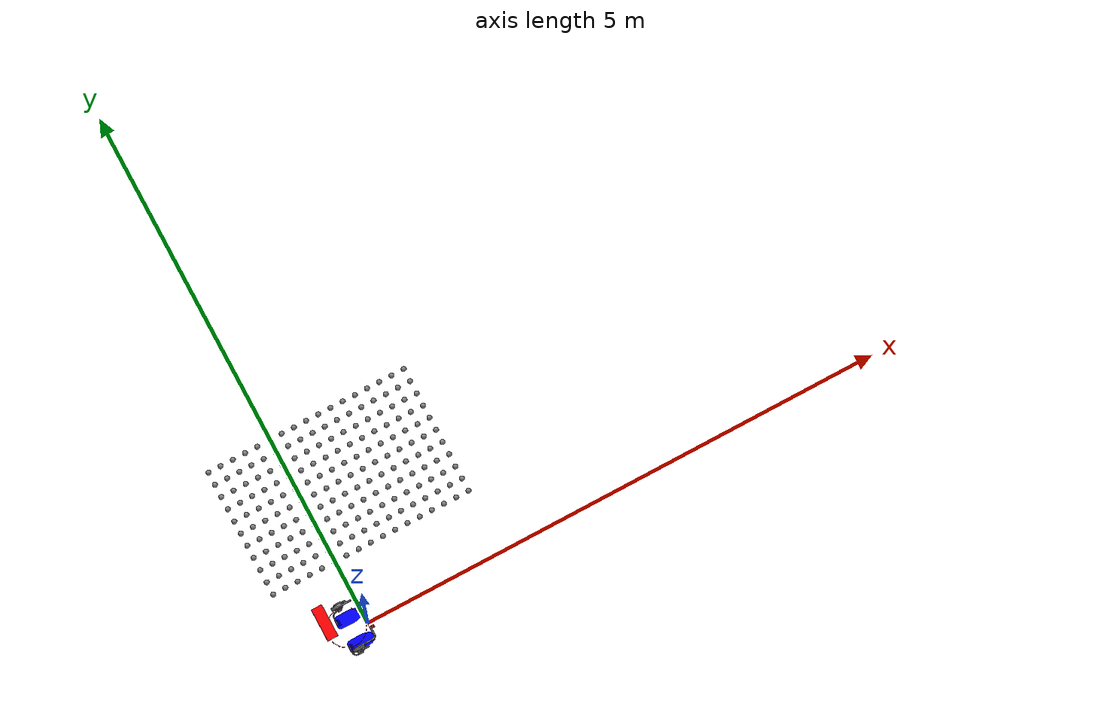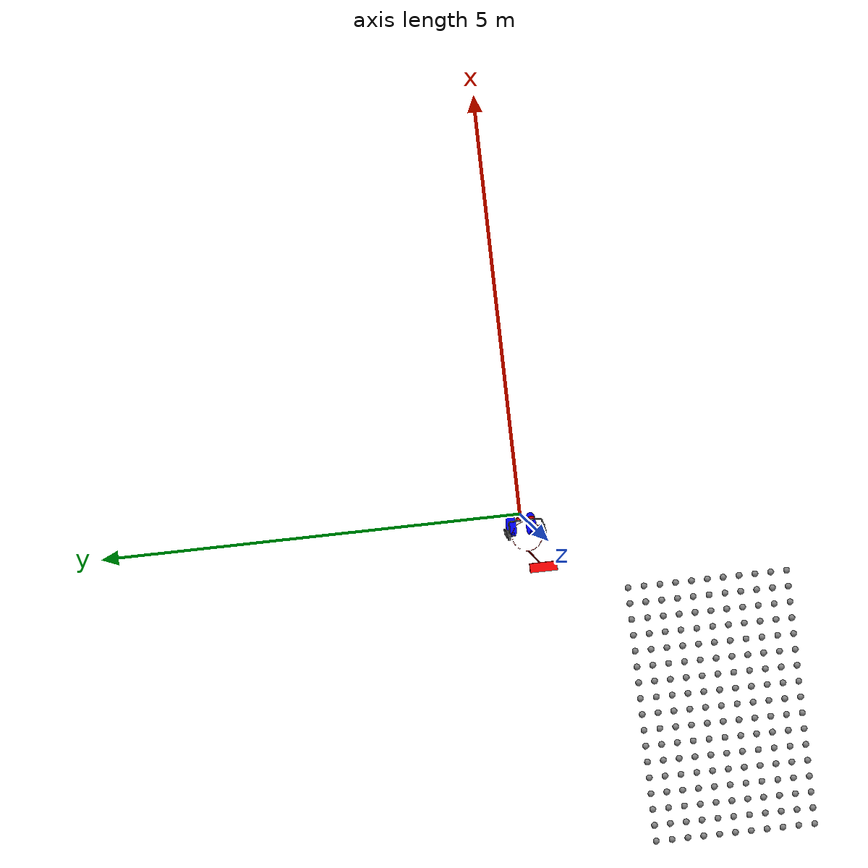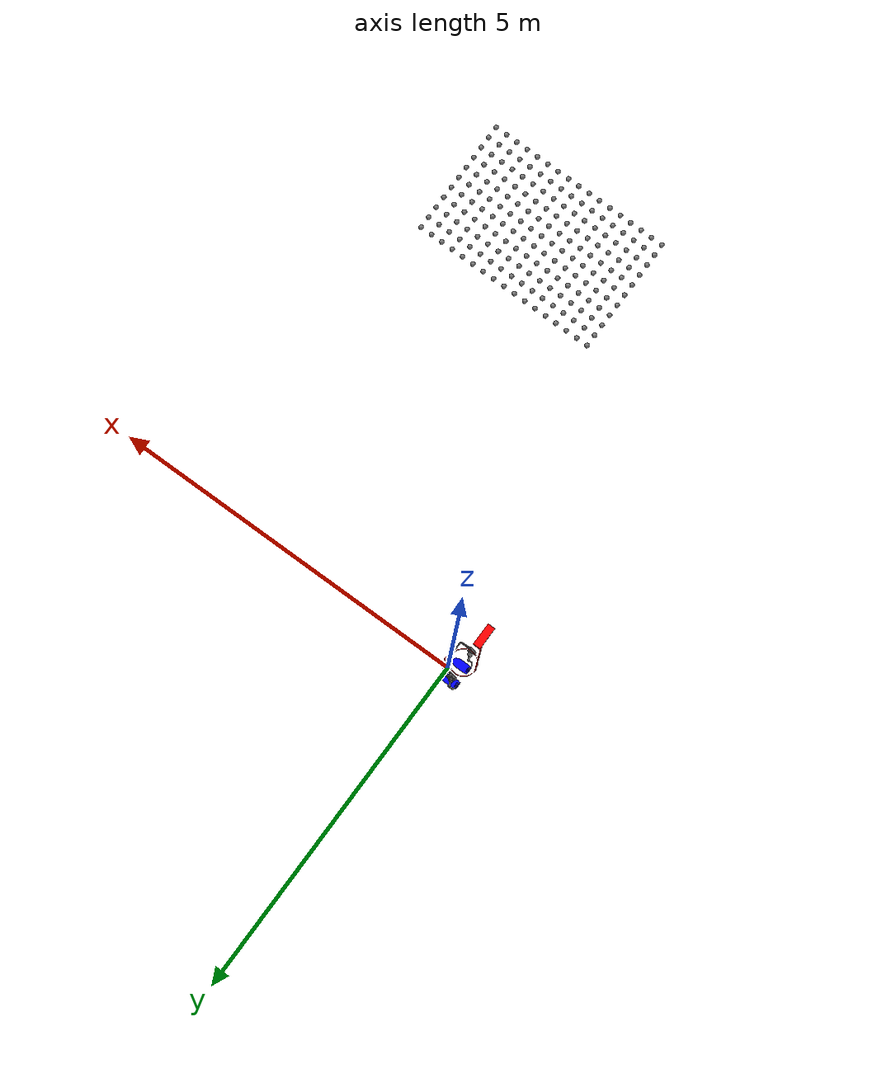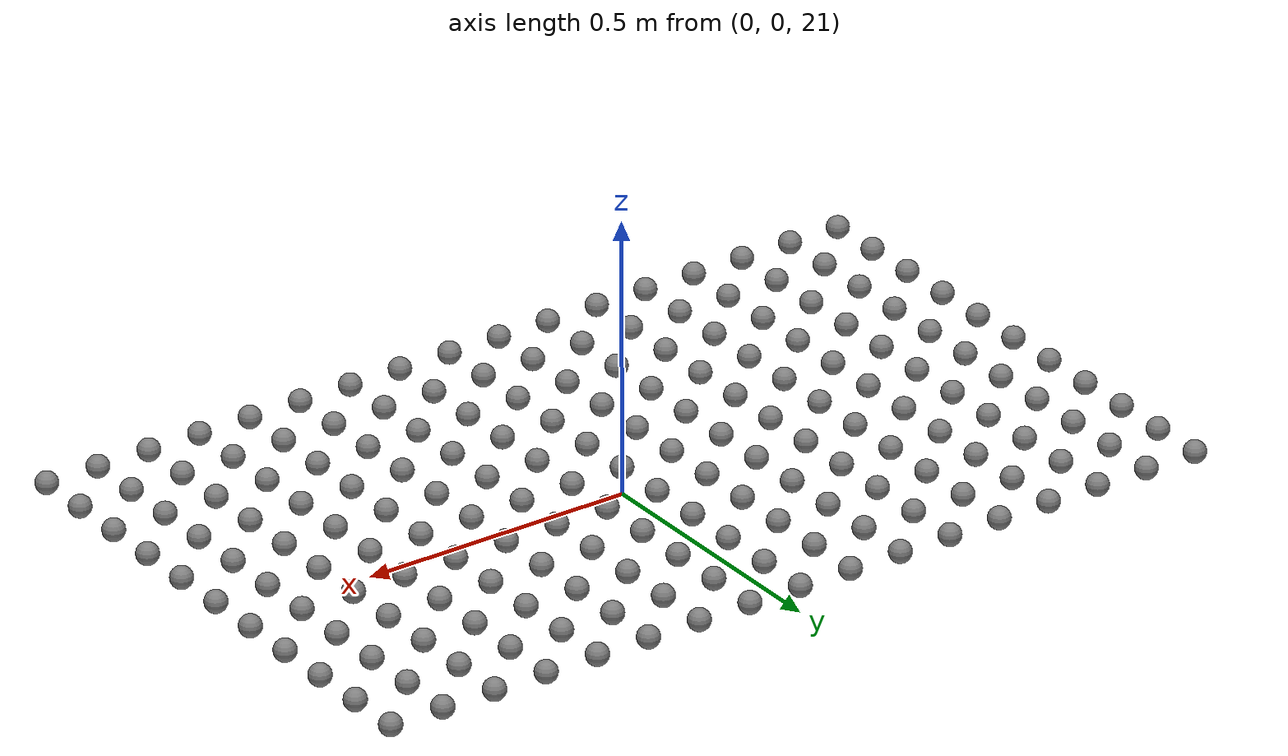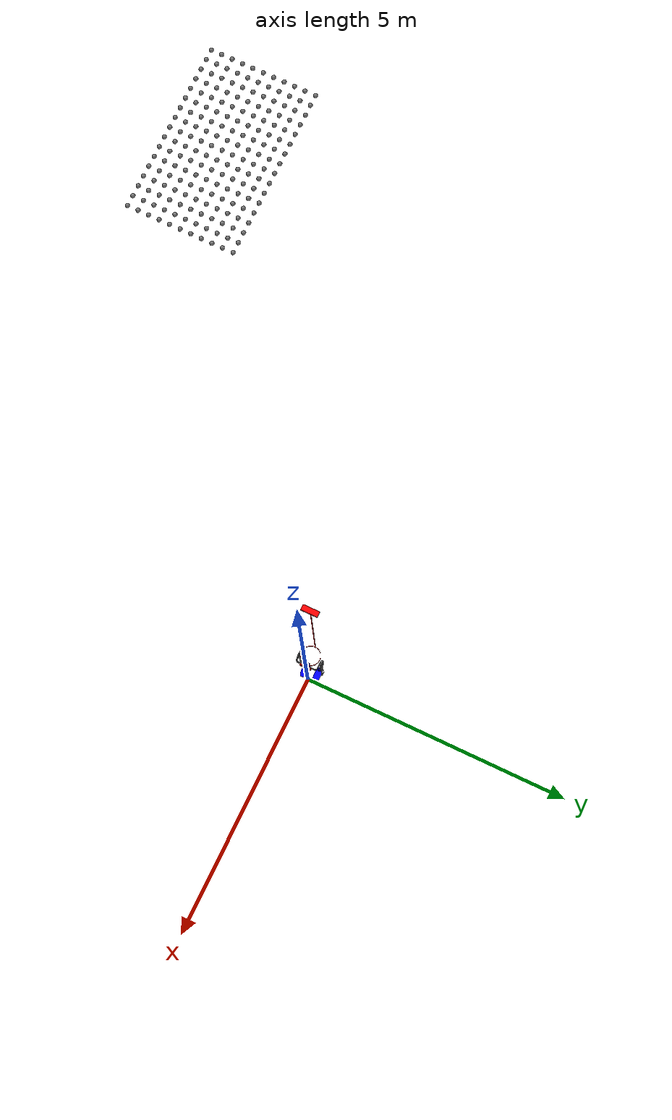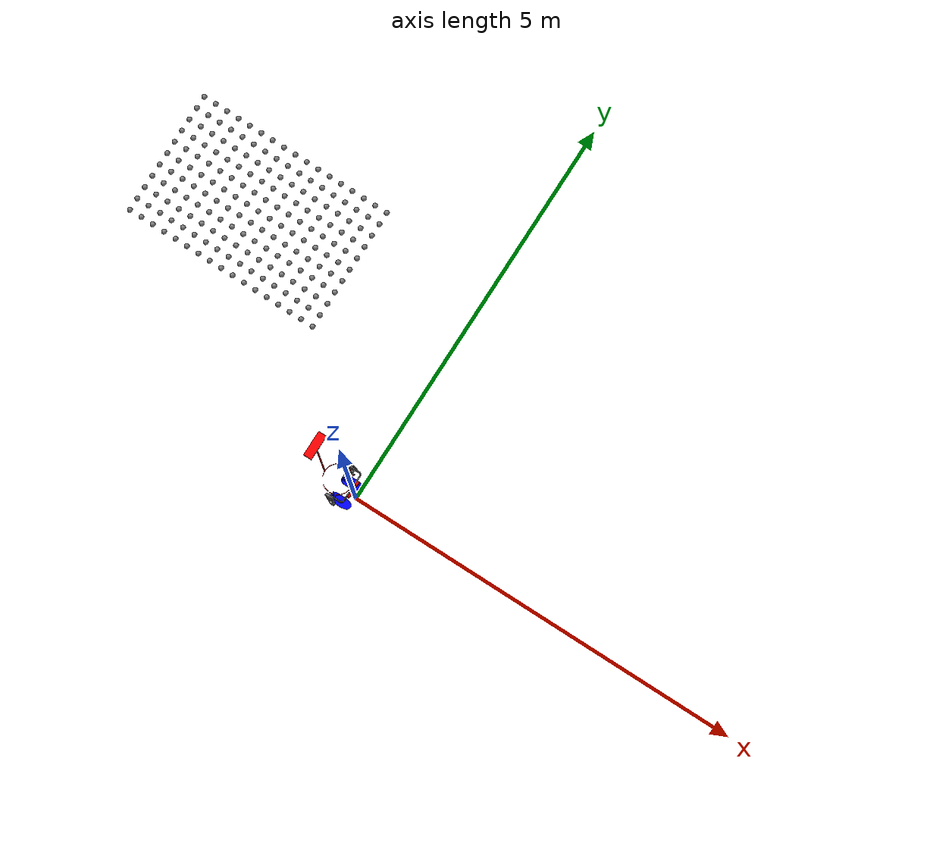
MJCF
<mujoco model="a2">

  <!-- ========== Compiler & Options ========== -->
  <compiler angle="radian" meshdir="../meshes" autolimits="true"/>

  <option timestep="0.005" gravity="0 0 -9.81">
  </option>

  <default>

    <joint damping="0.0" armature="0.00" limited="true"/>

    <default class="gemo_visual">  <!-- 只显示,不参与碰撞 -->
      <geom contype="0" conaffinity="0"/>
    </default>

    <default class="gemo_collision">  <!-- 只参与碰撞 -->
      <geom contype="0" conaffinity="1" group="3"/>
    </default>

    <default class="gemo_collision_box">
      <geom contype="1" conaffinity="1" group="4"/>
    </default>

  </default>

  <!-- ========== Assets (STL Meshes) ========== -->
  <asset>
    <mesh name="mesh_base"            file="base_link.STL"/>
    <mesh name="mesh_l_hip_roll"      file="left_hip_roll_link.STL"/>
    <mesh name="mesh_l_hip_yaw"       file="left_hip_yaw_link.STL"/>
    <mesh name="mesh_l_hip_pitch"     file="left_hip_pitch_link.STL"/>
    <mesh name="mesh_l_knee"          file="left_knee_link.STL"/>
    <mesh name="mesh_l_ankle_pitch"   file="left_ankle_pitch_link.STL"/>
    <mesh name="mesh_l_ankle_roll"    file="left_ankle_roll_link.STL"/>
    <mesh name="mesh_r_hip_roll"      file="right_hip_roll_link.STL"/>
    <mesh name="mesh_r_hip_yaw"       file="right_hip_yaw_link.STL"/>
    <mesh name="mesh_r_hip_pitch"     file="right_hip_pitch_link.STL"/>
    <mesh name="mesh_r_knee"          file="right_knee_link.STL"/>
    <mesh name="mesh_r_ankle_pitch"   file="right_ankle_pitch_link.STL"/>
    <mesh name="mesh_r_ankle_roll"    file="right_ankle_roll_link.STL"/>
  </asset>

  <asset>
      <texture name='texture_plane' type='2d' builtin='checker' rgb1='0.2745 0.5098 0.7059' rgb2='0.5294 0.8078 0.9804' width='128' height='128'/>
      <material name='material_plane' reflectance='0.0' texture='texture_plane' texrepeat='1 1' texuniform='true'/>
      <material name="gray" rgba="0.3 0.3 0.3 1"/>
      <material name="blue" rgba="0 0 1 1"/>
      <material name="red" rgba="1 0 0 1"/>
      <material name="green" rgba="0 1 0 1"/>
  </asset>

  <!-- ========== Worldbody ========== -->
  <worldbody>

    <body name= "box" pos="0 0 0" euler="0 0 0">
      <geom class="gemo_collision_box" type="box" size="0.2 0.2 0.1" pos="1.5 0.6 0.1"/>
    </body>

    <geom name="floor" type="plane" conaffinity="2" group="4" size="100 100 .2" material="material_plane"/>
       <light directional="true" ambient=".3 .3 .3" pos="30 30 30" dir="0 -.5 -1"
                    diffuse=".5 .5 .5" specular=".5 .5 .5" />

    <body name="base_link" pos="0 0 1.05" euler="0 0 0">
      <freejoint name="base_free"/>
      <inertial pos="-0.14464 0 0.63562" mass="1.6082" fullinertia="1.6349 1.6777 0.06302 0 0.2309 0"/>
      <geom class="gemo_visual" type="mesh" mesh="mesh_base" rgba="1 0 0 1"/>
      <geom class="gemo_collision" type="box" size="0.2 0.15 0.75" pos="-0.2 0 0.75"/>

      <body name="left_hip_roll_link" pos="-0.001 0.075 0" euler="0 0 0">
        <inertial pos="-0.11964 0.10244 -0.05598" mass="0.34283" fullinertia="0.00223 0.00379 0.00287 0.00091 -0.00132 0.00049"/>
        <joint name="left_hip_roll_joint" axis="1 0 0" range="-0.52 2.97"/>
        <geom class="gemo_visual" type="mesh" mesh="mesh_l_hip_roll"/>

        <body name="left_hip_yaw_link" pos="-0.166 0.128 -0.0835" euler="0 0 0">
          <inertial pos="-1E-05 0.00843 -0.04551" mass="0.46018"
                    fullinertia="0.00023 0.00035 0.00016 0 0 0"/>
          <joint name="left_hip_yaw_joint" axis="0 0 1" range="-2.76 2.76"/>
          <geom class="gemo_visual" type="mesh" mesh="mesh_l_hip_yaw"/>

          <body name="left_hip_pitch_link" pos="0 0.028 -0.0455" euler="0 0 0">
            <inertial pos="0.00472 -0.01824 -0.17562" mass="0.81624"
                      fullinertia="0.01192 0.01225 0.00052 -4E-05 -0.00047 -0.00068"/>
            <joint name="left_hip_pitch_joint" axis="0 1 0" range="-2.53 2.88"/>
            <geom class="gemo_visual" type="mesh" mesh="mesh_l_hip_pitch"/>

            <body name="left_knee_link" pos="0 -0.04325 -0.4" euler="0 0 0">
              <inertial pos="0 0.01314 -0.14741" mass="0.10574"
                        fullinertia="0.0018 0.0018 1E-05 0 0 -1E-05"/>
              <joint name="left_knee_joint" axis="0 1 0" range="-0.09 2.88"/>
              <geom class="gemo_visual" type="mesh" mesh="mesh_l_knee"/>

              <body name="left_ankle_pitch_link" pos="0 0.00825 -0.392" euler="0 0 0">
                <inertial pos="-0.04625 -0.01898 0" mass="0.04908"
                          fullinertia="7E-05 5E-05 0.00011 -4E-05 0 0"/>
                <joint name="left_ankle_pitch_joint" axis="0 1 0" range="-0.87 0.52"/>
                <geom class="gemo_visual" type="mesh" mesh="mesh_l_ankle_pitch"/>

                <body name="left_ankle_roll_link" pos="-0.063229 -0.0765 0" euler="0 0 0">
                  <inertial pos="0.04783 0 -0.08669" mass="0.21284"
                            fullinertia="0.00043 0.00147 0.00134 0 0.00031 0"/>
                  <joint name="left_ankle_roll_joint" axis="1 0 0" range="-0.26 0.26"/>
                  <geom class="gemo_visual" type="mesh" mesh="mesh_l_ankle_roll" rgba="0 0 1 1"/>

                  <body name="leg_lfoot_link" pos="0.11 0.0 -0.125" euler="0 0 1.5708">
                    <inertial pos="0 0 0" mass="0.0001"
                              fullinertia="0.000001 0.000001 0.000001 0 0 0"/>
                    <geom class="gemo_collision" type="box" size="0.06 0.1275 0.001" pos="0 0 0.0125" rgba="0 1 0 1"/>
                  </body>
                </body>
              </body>
            </body>
          </body>
        </body>
      </body>

      <body name="right_hip_roll_link" pos="-0.001 -0.075 0" euler="0 0 0">
        <inertial pos="-0.11964 -0.10243 -0.05598" mass="0.34281" fullinertia="0.00223 0.00379 0.00287 -0.00091 -0.00132 -0.00049"/>
        <joint name="right_hip_roll_joint" axis="1 0 0" range="-2.97 0.52"/>
        <geom class="gemo_visual" type="mesh" mesh="mesh_r_hip_roll"/>

        <body name="right_hip_yaw_link" pos="-0.166 -0.128 -0.0835" euler="0 0 0">
          <inertial pos="-1E-05 -0.00843 -0.04551" mass="0.46018"
                    fullinertia="0.00023 0.00035 0.00016 0 0 0"/>
          <joint name="right_hip_yaw_joint" axis="0 0 1" range="-2.76 2.76"/>
          <geom class="gemo_visual" type="mesh" mesh="mesh_r_hip_yaw"/>

          <body name="right_hip_pitch_link" pos="0 -0.028 -0.0455" euler="0 0 0">
            <inertial pos="0.00472 0.01824 -0.17562" mass="0.81624"
                      fullinertia="0.01192 0.01225 0.00052 4E-05 -0.00047 0.00068"/>
            <joint name="right_hip_pitch_joint" axis="0 1 0" range="-2.53 2.88"/>
            <geom class="gemo_visual" type="mesh" mesh="mesh_r_hip_pitch"/>

            <body name="right_knee_link" pos="0 0.04325 -0.4" euler="0 0 0">
              <inertial pos="0 -0.01314 -0.14741" mass="0.10574"
                        fullinertia="0.0018 0.0018 1E-05 0 0 1E-05"/>
              <joint name="right_knee_joint" axis="0 1 0" range="-0.09 2.88"/>
              <geom class="gemo_visual" type="mesh" mesh="mesh_r_knee"/>

              <body name="right_ankle_pitch_link" pos="0 -0.00825 -0.392" euler="0 0 0">
                <inertial pos="-0.04625 0.01898 0" mass="0.04908"
                          fullinertia="7E-05 5E-05 0.00011 4E-05 0 0"/>
                <joint name="right_ankle_pitch_joint" axis="0 1 0" range="-0.87 0.52"/>
                <geom class="gemo_visual" type="mesh" mesh="mesh_r_ankle_pitch"/>

                <body name="right_ankle_roll_link" pos="-0.063229 0.0765 0" euler="0 0 0">
                  <inertial pos="0.04784 0 -0.08669" mass="0.21281"
                            fullinertia="0.00043 0.00147 0.00134 0 0.00031 0"/>
                  <joint name="right_ankle_roll_joint" axis="1 0 0" range="-0.26 0.26"/>
                  <geom class="gemo_visual" type="mesh" mesh="mesh_r_ankle_roll" rgba="0 0 1 1"/>

                  <body name="leg_rfoot_link" pos="0.11 0.0 -0.125" euler="0 0 1.5708">
                    <inertial pos="0 0 0" mass="0.0001"
                              fullinertia="0.000001 0.000001 0.000001 0 0 0"/>
                    <geom class="gemo_collision" type="box" size="0.06 0.1275 0.001" pos="0 0 0.0125" rgba="0 1 0 1"/>
                  </body>
                </body>
              </body>
            </body>
          </body>
        </body>
      </body>

    <!-- ========== Ray Scanner Sites (187 rays, 17×11 grid) ========== -->
      <site name="ray_site_0" type="sphere" size="0.02" pos="-0.8 -0.5 20.0" zaxis="0 0 -1"/>
      <site name="ray_site_1" type="sphere" size="0.02" pos="-0.7 -0.5 20.0" zaxis="0 0 -1"/>
      <site name="ray_site_2" type="sphere" size="0.02" pos="-0.6 -0.5 20.0" zaxis="0 0 -1"/>
      <site name="ray_site_3" type="sphere" size="0.02" pos="-0.5 -0.5 20.0" zaxis="0 0 -1"/>
      <site name="ray_site_4" type="sphere" size="0.02" pos="-0.4 -0.5 20.0" zaxis="0 0 -1"/>
      <site name="ray_site_5" type="sphere" size="0.02" pos="-0.3 -0.5 20.0" zaxis="0 0 -1"/>
      <site name="ray_site_6" type="sphere" size="0.02" pos="-0.2 -0.5 20.0" zaxis="0 0 -1"/>
      <site name="ray_site_7" type="sphere" size="0.02" pos="-0.1 -0.5 20.0" zaxis="0 0 -1"/>
      <site name="ray_site_8" type="sphere" size="0.02" pos="0.0 -0.5 20.0" zaxis="0 0 -1"/>
      <site name="ray_site_9" type="sphere" size="0.02" pos="0.1 -0.5 20.0" zaxis="0 0 -1"/>
      <site name="ray_site_10" type="sphere" size="0.02" pos="0.2 -0.5 20.0" zaxis="0 0 -1"/>
      <site name="ray_site_11" type="sphere" size="0.02" pos="0.3 -0.5 20.0" zaxis="0 0 -1"/>
      <site name="ray_site_12" type="sphere" size="0.02" pos="0.4 -0.5 20.0" zaxis="0 0 -1"/>
      <site name="ray_site_13" type="sphere" size="0.02" pos="0.5 -0.5 20.0" zaxis="0 0 -1"/>
      <site name="ray_site_14" type="sphere" size="0.02" pos="0.6 -0.5 20.0" zaxis="0 0 -1"/>
      <site name="ray_site_15" type="sphere" size="0.02" pos="0.7 -0.5 20.0" zaxis="0 0 -1"/>
      <site name="ray_site_16" type="sphere" size="0.02" pos="0.8 -0.5 20.0" zaxis="0 0 -1"/>
      <site name="ray_site_17" type="sphere" size="0.02" pos="-0.8 -0.4 20.0" zaxis="0 0 -1"/>
      <site name="ray_site_18" type="sphere" size="0.02" pos="-0.7 -0.4 20.0" zaxis="0 0 -1"/>
      <site name="ray_site_19" type="sphere" size="0.02" pos="-0.6 -0.4 20.0" zaxis="0 0 -1"/>
      <site name="ray_site_20" type="sphere" size="0.02" pos="-0.5 -0.4 20.0" zaxis="0 0 -1"/>
      <site name="ray_site_21" type="sphere" size="0.02" pos="-0.4 -0.4 20.0" zaxis="0 0 -1"/>
      <site name="ray_site_22" type="sphere" size="0.02" pos="-0.3 -0.4 20.0" zaxis="0 0 -1"/>
      <site name="ray_site_23" type="sphere" size="0.02" pos="-0.2 -0.4 20.0" zaxis="0 0 -1"/>
      <site name="ray_site_24" type="sphere" size="0.02" pos="-0.1 -0.4 20.0" zaxis="0 0 -1"/>
      <site name="ray_site_25" type="sphere" size="0.02" pos="0.0 -0.4 20.0" zaxis="0 0 -1"/>
      <site name="ray_site_26" type="sphere" size="0.02" pos="0.1 -0.4 20.0" zaxis="0 0 -1"/>
      <site name="ray_site_27" type="sphere" size="0.02" pos="0.2 -0.4 20.0" zaxis="0 0 -1"/>
      <site name="ray_site_28" type="sphere" size="0.02" pos="0.3 -0.4 20.0" zaxis="0 0 -1"/>
      <site name="ray_site_29" type="sphere" size="0.02" pos="0.4 -0.4 20.0" zaxis="0 0 -1"/>
      <site name="ray_site_30" type="sphere" size="0.02" pos="0.5 -0.4 20.0" zaxis="0 0 -1"/>
      <site name="ray_site_31" type="sphere" size="0.02" pos="0.6 -0.4 20.0" zaxis="0 0 -1"/>
      <site name="ray_site_32" type="sphere" size="0.02" pos="0.7 -0.4 20.0" zaxis="0 0 -1"/>
      <site name="ray_site_33" type="sphere" size="0.02" pos="0.8 -0.4 20.0" zaxis="0 0 -1"/>
      <site name="ray_site_34" type="sphere" size="0.02" pos="-0.8 -0.3 20.0" zaxis="0 0 -1"/>
      <site name="ray_site_35" type="sphere" size="0.02" pos="-0.7 -0.3 20.0" zaxis="0 0 -1"/>
      <site name="ray_site_36" type="sphere" size="0.02" pos="-0.6 -0.3 20.0" zaxis="0 0 -1"/>
      <site name="ray_site_37" type="sphere" size="0.02" pos="-0.5 -0.3 20.0" zaxis="0 0 -1"/>
      <site name="ray_site_38" type="sphere" size="0.02" pos="-0.4 -0.3 20.0" zaxis="0 0 -1"/>
      <site name="ray_site_39" type="sphere" size="0.02" pos="-0.3 -0.3 20.0" zaxis="0 0 -1"/>
      <site name="ray_site_40" type="sphere" size="0.02" pos="-0.2 -0.3 20.0" zaxis="0 0 -1"/>
      <site name="ray_site_41" type="sphere" size="0.02" pos="-0.1 -0.3 20.0" zaxis="0 0 -1"/>
      <site name="ray_site_42" type="sphere" size="0.02" pos="0.0 -0.3 20.0" zaxis="0 0 -1"/>
      <site name="ray_site_43" type="sphere" size="0.02" pos="0.1 -0.3 20.0" zaxis="0 0 -1"/>
      <site name="ray_site_44" type="sphere" size="0.02" pos="0.2 -0.3 20.0" zaxis="0 0 -1"/>
      <site name="ray_site_45" type="sphere" size="0.02" pos="0.3 -0.3 20.0" zaxis="0 0 -1"/>
      <site name="ray_site_46" type="sphere" size="0.02" pos="0.4 -0.3 20.0" zaxis="0 0 -1"/>
      <site name="ray_site_47" type="sphere" size="0.02" pos="0.5 -0.3 20.0" zaxis="0 0 -1"/>
      <site name="ray_site_48" type="sphere" size="0.02" pos="0.6 -0.3 20.0" zaxis="0 0 -1"/>
      <site name="ray_site_49" type="sphere" size="0.02" pos="0.7 -0.3 20.0" zaxis="0 0 -1"/>
      <site name="ray_site_50" type="sphere" size="0.02" pos="0.8 -0.3 20.0" zaxis="0 0 -1"/>
      <site name="ray_site_51" type="sphere" size="0.02" pos="-0.8 -0.2 20.0" zaxis="0 0 -1"/>
      <site name="ray_site_52" type="sphere" size="0.02" pos="-0.7 -0.2 20.0" zaxis="0 0 -1"/>
      <site name="ray_site_53" type="sphere" size="0.02" pos="-0.6 -0.2 20.0" zaxis="0 0 -1"/>
      <site name="ray_site_54" type="sphere" size="0.02" pos="-0.5 -0.2 20.0" zaxis="0 0 -1"/>
      <site name="ray_site_55" type="sphere" size="0.02" pos="-0.4 -0.2 20.0" zaxis="0 0 -1"/>
      <site name="ray_site_56" type="sphere" size="0.02" pos="-0.3 -0.2 20.0" zaxis="0 0 -1"/>
      <site name="ray_site_57" type="sphere" size="0.02" pos="-0.2 -0.2 20.0" zaxis="0 0 -1"/>
      <site name="ray_site_58" type="sphere" size="0.02" pos="-0.1 -0.2 20.0" zaxis="0 0 -1"/>
      <site name="ray_site_59" type="sphere" size="0.02" pos="0.0 -0.2 20.0" zaxis="0 0 -1"/>
      <site name="ray_site_60" type="sphere" size="0.02" pos="0.1 -0.2 20.0" zaxis="0 0 -1"/>
      <site name="ray_site_61" type="sphere" size="0.02" pos="0.2 -0.2 20.0" zaxis="0 0 -1"/>
      <site name="ray_site_62" type="sphere" size="0.02" pos="0.3 -0.2 20.0" zaxis="0 0 -1"/>
      <site name="ray_site_63" type="sphere" size="0.02" pos="0.4 -0.2 20.0" zaxis="0 0 -1"/>
      <site name="ray_site_64" type="sphere" size="0.02" pos="0.5 -0.2 20.0" zaxis="0 0 -1"/>
      <site name="ray_site_65" type="sphere" size="0.02" pos="0.6 -0.2 20.0" zaxis="0 0 -1"/>
      <site name="ray_site_66" type="sphere" size="0.02" pos="0.7 -0.2 20.0" zaxis="0 0 -1"/>
      <site name="ray_site_67" type="sphere" size="0.02" pos="0.8 -0.2 20.0" zaxis="0 0 -1"/>
      <site name="ray_site_68" type="sphere" size="0.02" pos="-0.8 -0.1 20.0" zaxis="0 0 -1"/>
      <site name="ray_site_69" type="sphere" size="0.02" pos="-0.7 -0.1 20.0" zaxis="0 0 -1"/>
      <site name="ray_site_70" type="sphere" size="0.02" pos="-0.6 -0.1 20.0" zaxis="0 0 -1"/>
      <site name="ray_site_71" type="sphere" size="0.02" pos="-0.5 -0.1 20.0" zaxis="0 0 -1"/>
      <site name="ray_site_72" type="sphere" size="0.02" pos="-0.4 -0.1 20.0" zaxis="0 0 -1"/>
      <site name="ray_site_73" type="sphere" size="0.02" pos="-0.3 -0.1 20.0" zaxis="0 0 -1"/>
      <site name="ray_site_74" type="sphere" size="0.02" pos="-0.2 -0.1 20.0" zaxis="0 0 -1"/>
      <site name="ray_site_75" type="sphere" size="0.02" pos="-0.1 -0.1 20.0" zaxis="0 0 -1"/>
      <site name="ray_site_76" type="sphere" size="0.02" pos="0.0 -0.1 20.0" zaxis="0 0 -1"/>
      <site name="ray_site_77" type="sphere" size="0.02" pos="0.1 -0.1 20.0" zaxis="0 0 -1"/>
      <site name="ray_site_78" type="sphere" size="0.02" pos="0.2 -0.1 20.0" zaxis="0 0 -1"/>
      <site name="ray_site_79" type="sphere" size="0.02" pos="0.3 -0.1 20.0" zaxis="0 0 -1"/>
      <site name="ray_site_80" type="sphere" size="0.02" pos="0.4 -0.1 20.0" zaxis="0 0 -1"/>
      <site name="ray_site_81" type="sphere" size="0.02" pos="0.5 -0.1 20.0" zaxis="0 0 -1"/>
      <site name="ray_site_82" type="sphere" size="0.02" pos="0.6 -0.1 20.0" zaxis="0 0 -1"/>
      <site name="ray_site_83" type="sphere" size="0.02" pos="0.7 -0.1 20.0" zaxis="0 0 -1"/>
      <site name="ray_site_84" type="sphere" size="0.02" pos="0.8 -0.1 20.0" zaxis="0 0 -1"/>
      <site name="ray_site_85" type="sphere" size="0.02" pos="-0.8 0.0 20.0" zaxis="0 0 -1"/>
      <site name="ray_site_86" type="sphere" size="0.02" pos="-0.7 0.0 20.0" zaxis="0 0 -1"/>
      <site name="ray_site_87" type="sphere" size="0.02" pos="-0.6 0.0 20.0" zaxis="0 0 -1"/>
      <site name="ray_site_88" type="sphere" size="0.02" pos="-0.5 0.0 20.0" zaxis="0 0 -1"/>
      <site name="ray_site_89" type="sphere" size="0.02" pos="-0.4 0.0 20.0" zaxis="0 0 -1"/>
      <site name="ray_site_90" type="sphere" size="0.02" pos="-0.3 0.0 20.0" zaxis="0 0 -1"/>
      <site name="ray_site_91" type="sphere" size="0.02" pos="-0.2 0.0 20.0" zaxis="0 0 -1"/>
      <site name="ray_site_92" type="sphere" size="0.02" pos="-0.1 0.0 20.0" zaxis="0 0 -1"/>
      <site name="ray_site_93" type="sphere" size="0.02" pos="0.0 0.0 20.0" zaxis="0 0 -1"/>
      <site name="ray_site_94" type="sphere" size="0.02" pos="0.1 0.0 20.0" zaxis="0 0 -1"/>
      <site name="ray_site_95" type="sphere" size="0.02" pos="0.2 0.0 20.0" zaxis="0 0 -1"/>
      <site name="ray_site_96" type="sphere" size="0.02" pos="0.3 0.0 20.0" zaxis="0 0 -1"/>
      <site name="ray_site_97" type="sphere" size="0.02" pos="0.4 0.0 20.0" zaxis="0 0 -1"/>
      <site name="ray_site_98" type="sphere" size="0.02" pos="0.5 0.0 20.0" zaxis="0 0 -1"/>
      <site name="ray_site_99" type="sphere" size="0.02" pos="0.6 0.0 20.0" zaxis="0 0 -1"/>
      <site name="ray_site_100" type="sphere" size="0.02" pos="0.7 0.0 20.0" zaxis="0 0 -1"/>
      <site name="ray_site_101" type="sphere" size="0.02" pos="0.8 0.0 20.0" zaxis="0 0 -1"/>
      <site name="ray_site_102" type="sphere" size="0.02" pos="-0.8 0.1 20.0" zaxis="0 0 -1"/>
      <site name="ray_site_103" type="sphere" size="0.02" pos="-0.7 0.1 20.0" zaxis="0 0 -1"/>
      <site name="ray_site_104" type="sphere" size="0.02" pos="-0.6 0.1 20.0" zaxis="0 0 -1"/>
      <site name="ray_site_105" type="sphere" size="0.02" pos="-0.5 0.1 20.0" zaxis="0 0 -1"/>
      <site name="ray_site_106" type="sphere" size="0.02" pos="-0.4 0.1 20.0" zaxis="0 0 -1"/>
      <site name="ray_site_107" type="sphere" size="0.02" pos="-0.3 0.1 20.0" zaxis="0 0 -1"/>
      <site name="ray_site_108" type="sphere" size="0.02" pos="-0.2 0.1 20.0" zaxis="0 0 -1"/>
      <site name="ray_site_109" type="sphere" size="0.02" pos="-0.1 0.1 20.0" zaxis="0 0 -1"/>
      <site name="ray_site_110" type="sphere" size="0.02" pos="0.0 0.1 20.0" zaxis="0 0 -1"/>
      <site name="ray_site_111" type="sphere" size="0.02" pos="0.1 0.1 20.0" zaxis="0 0 -1"/>
      <site name="ray_site_112" type="sphere" size="0.02" pos="0.2 0.1 20.0" zaxis="0 0 -1"/>
      <site name="ray_site_113" type="sphere" size="0.02" pos="0.3 0.1 20.0" zaxis="0 0 -1"/>
      <site name="ray_site_114" type="sphere" size="0.02" pos="0.4 0.1 20.0" zaxis="0 0 -1"/>
      <site name="ray_site_115" type="sphere" size="0.02" pos="0.5 0.1 20.0" zaxis="0 0 -1"/>
      <site name="ray_site_116" type="sphere" size="0.02" pos="0.6 0.1 20.0" zaxis="0 0 -1"/>
      <site name="ray_site_117" type="sphere" size="0.02" pos="0.7 0.1 20.0" zaxis="0 0 -1"/>
      <site name="ray_site_118" type="sphere" size="0.02" pos="0.8 0.1 20.0" zaxis="0 0 -1"/>
      <site name="ray_site_119" type="sphere" size="0.02" pos="-0.8 0.2 20.0" zaxis="0 0 -1"/>
      <site name="ray_site_120" type="sphere" size="0.02" pos="-0.7 0.2 20.0" zaxis="0 0 -1"/>
      <site name="ray_site_121" type="sphere" size="0.02" pos="-0.6 0.2 20.0" zaxis="0 0 -1"/>
      <site name="ray_site_122" type="sphere" size="0.02" pos="-0.5 0.2 20.0" zaxis="0 0 -1"/>
      <site name="ray_site_123" type="sphere" size="0.02" pos="-0.4 0.2 20.0" zaxis="0 0 -1"/>
      <site name="ray_site_124" type="sphere" size="0.02" pos="-0.3 0.2 20.0" zaxis="0 0 -1"/>
      <site name="ray_site_125" type="sphere" size="0.02" pos="-0.2 0.2 20.0" zaxis="0 0 -1"/>
      <site name="ray_site_126" type="sphere" size="0.02" pos="-0.1 0.2 20.0" zaxis="0 0 -1"/>
      <site name="ray_site_127" type="sphere" size="0.02" pos="0.0 0.2 20.0" zaxis="0 0 -1"/>
      <site name="ray_site_128" type="sphere" size="0.02" pos="0.1 0.2 20.0" zaxis="0 0 -1"/>
      <site name="ray_site_129" type="sphere" size="0.02" pos="0.2 0.2 20.0" zaxis="0 0 -1"/>
      <site name="ray_site_130" type="sphere" size="0.02" pos="0.3 0.2 20.0" zaxis="0 0 -1"/>
      <site name="ray_site_131" type="sphere" size="0.02" pos="0.4 0.2 20.0" zaxis="0 0 -1"/>
      <site name="ray_site_132" type="sphere" size="0.02" pos="0.5 0.2 20.0" zaxis="0 0 -1"/>
      <site name="ray_site_133" type="sphere" size="0.02" pos="0.6 0.2 20.0" zaxis="0 0 -1"/>
      <site name="ray_site_134" type="sphere" size="0.02" pos="0.7 0.2 20.0" zaxis="0 0 -1"/>
      <site name="ray_site_135" type="sphere" size="0.02" pos="0.8 0.2 20.0" zaxis="0 0 -1"/>
      <site name="ray_site_136" type="sphere" size="0.02" pos="-0.8 0.3 20.0" zaxis="0 0 -1"/>
      <site name="ray_site_137" type="sphere" size="0.02" pos="-0.7 0.3 20.0" zaxis="0 0 -1"/>
      <site name="ray_site_138" type="sphere" size="0.02" pos="-0.6 0.3 20.0" zaxis="0 0 -1"/>
      <site name="ray_site_139" type="sphere" size="0.02" pos="-0.5 0.3 20.0" zaxis="0 0 -1"/>
      <site name="ray_site_140" type="sphere" size="0.02" pos="-0.4 0.3 20.0" zaxis="0 0 -1"/>
      <site name="ray_site_141" type="sphere" size="0.02" pos="-0.3 0.3 20.0" zaxis="0 0 -1"/>
      <site name="ray_site_142" type="sphere" size="0.02" pos="-0.2 0.3 20.0" zaxis="0 0 -1"/>
      <site name="ray_site_143" type="sphere" size="0.02" pos="-0.1 0.3 20.0" zaxis="0 0 -1"/>
      <site name="ray_site_144" type="sphere" size="0.02" pos="0.0 0.3 20.0" zaxis="0 0 -1"/>
      <site name="ray_site_145" type="sphere" size="0.02" pos="0.1 0.3 20.0" zaxis="0 0 -1"/>
      <site name="ray_site_146" type="sphere" size="0.02" pos="0.2 0.3 20.0" zaxis="0 0 -1"/>
      <site name="ray_site_147" type="sphere" size="0.02" pos="0.3 0.3 20.0" zaxis="0 0 -1"/>
      <site name="ray_site_148" type="sphere" size="0.02" pos="0.4 0.3 20.0" zaxis="0 0 -1"/>
      <site name="ray_site_149" type="sphere" size="0.02" pos="0.5 0.3 20.0" zaxis="0 0 -1"/>
      <site name="ray_site_150" type="sphere" size="0.02" pos="0.6 0.3 20.0" zaxis="0 0 -1"/>
      <site name="ray_site_151" type="sphere" size="0.02" pos="0.7 0.3 20.0" zaxis="0 0 -1"/>
      <site name="ray_site_152" type="sphere" size="0.02" pos="0.8 0.3 20.0" zaxis="0 0 -1"/>
      <site name="ray_site_153" type="sphere" size="0.02" pos="-0.8 0.4 20.0" zaxis="0 0 -1"/>
      <site name="ray_site_154" type="sphere" size="0.02" pos="-0.7 0.4 20.0" zaxis="0 0 -1"/>
      <site name="ray_site_155" type="sphere" size="0.02" pos="-0.6 0.4 20.0" zaxis="0 0 -1"/>
      <site name="ray_site_156" type="sphere" size="0.02" pos="-0.5 0.4 20.0" zaxis="0 0 -1"/>
      <site name="ray_site_157" type="sphere" size="0.02" pos="-0.4 0.4 20.0" zaxis="0 0 -1"/>
      <site name="ray_site_158" type="sphere" size="0.02" pos="-0.3 0.4 20.0" zaxis="0 0 -1"/>
      <site name="ray_site_159" type="sphere" size="0.02" pos="-0.2 0.4 20.0" zaxis="0 0 -1"/>
      <site name="ray_site_160" type="sphere" size="0.02" pos="-0.1 0.4 20.0" zaxis="0 0 -1"/>
      <site name="ray_site_161" type="sphere" size="0.02" pos="0.0 0.4 20.0" zaxis="0 0 -1"/>
      <site name="ray_site_162" type="sphere" size="0.02" pos="0.1 0.4 20.0" zaxis="0 0 -1"/>
      <site name="ray_site_163" type="sphere" size="0.02" pos="0.2 0.4 20.0" zaxis="0 0 -1"/>
      <site name="ray_site_164" type="sphere" size="0.02" pos="0.3 0.4 20.0" zaxis="0 0 -1"/>
      <site name="ray_site_165" type="sphere" size="0.02" pos="0.4 0.4 20.0" zaxis="0 0 -1"/>
      <site name="ray_site_166" type="sphere" size="0.02" pos="0.5 0.4 20.0" zaxis="0 0 -1"/>
      <site name="ray_site_167" type="sphere" size="0.02" pos="0.6 0.4 20.0" zaxis="0 0 -1"/>
      <site name="ray_site_168" type="sphere" size="0.02" pos="0.7 0.4 20.0" zaxis="0 0 -1"/>
      <site name="ray_site_169" type="sphere" size="0.02" pos="0.8 0.4 20.0" zaxis="0 0 -1"/>
      <site name="ray_site_170" type="sphere" size="0.02" pos="-0.8 0.5 20.0" zaxis="0 0 -1"/>
      <site name="ray_site_171" type="sphere" size="0.02" pos="-0.7 0.5 20.0" zaxis="0 0 -1"/>
      <site name="ray_site_172" type="sphere" size="0.02" pos="-0.6 0.5 20.0" zaxis="0 0 -1"/>
      <site name="ray_site_173" type="sphere" size="0.02" pos="-0.5 0.5 20.0" zaxis="0 0 -1"/>
      <site name="ray_site_174" type="sphere" size="0.02" pos="-0.4 0.5 20.0" zaxis="0 0 -1"/>
      <site name="ray_site_175" type="sphere" size="0.02" pos="-0.3 0.5 20.0" zaxis="0 0 -1"/>
      <site name="ray_site_176" type="sphere" size="0.02" pos="-0.2 0.5 20.0" zaxis="0 0 -1"/>
      <site name="ray_site_177" type="sphere" size="0.02" pos="-0.1 0.5 20.0" zaxis="0 0 -1"/>
      <site name="ray_site_178" type="sphere" size="0.02" pos="0.0 0.5 20.0" zaxis="0 0 -1"/>
      <site name="ray_site_179" type="sphere" size="0.02" pos="0.1 0.5 20.0" zaxis="0 0 -1"/>
      <site name="ray_site_180" type="sphere" size="0.02" pos="0.2 0.5 20.0" zaxis="0 0 -1"/>
      <site name="ray_site_181" type="sphere" size="0.02" pos="0.3 0.5 20.0" zaxis="0 0 -1"/>
      <site name="ray_site_182" type="sphere" size="0.02" pos="0.4 0.5 20.0" zaxis="0 0 -1"/>
      <site name="ray_site_183" type="sphere" size="0.02" pos="0.5 0.5 20.0" zaxis="0 0 -1"/>
      <site name="ray_site_184" type="sphere" size="0.02" pos="0.6 0.5 20.0" zaxis="0 0 -1"/>
      <site name="ray_site_185" type="sphere" size="0.02" pos="0.7 0.5 20.0" zaxis="0 0 -1"/>
      <site name="ray_site_186" type="sphere" size="0.02" pos="0.8 0.5 20.0" zaxis="0 0 -1"/>

    </body><!-- /base_link -->
  </worldbody>

  <actuator>

    <!-- Left Leg Actuators -->
    <position name="act_left_hip_roll_joint"    joint="left_hip_roll_joint"
              ctrlrange="-0.52 2.97"  kp="50.0" kv="0.3" forcerange="-200.0 200.0"/>
    <position name="act_left_hip_yaw_joint"     joint="left_hip_yaw_joint"
              ctrlrange="-2.76 2.76"  kp="50.0" kv="0.3" forcerange="-200.0 200.0"/>
    <position name="act_left_hip_pitch_joint"   joint="left_hip_pitch_joint"
              ctrlrange="-2.53 2.88"  kp="50.0" kv="0.3" forcerange="-200.0 200.0"/>
    <position name="act_left_knee_joint"        joint="left_knee_joint"
              ctrlrange="-0.09 2.88"  kp="50.0" kv="0.3" forcerange="-200.0 200.0"/>
    <position name="act_left_ankle_pitch_joint" joint="left_ankle_pitch_joint"
              ctrlrange="-0.87 0.52"  kp="50.0" kv="0.3" forcerange="-200.0 200.0"/>
    <position name="act_left_ankle_roll_joint"  joint="left_ankle_roll_joint"
              ctrlrange="-0.26 0.26"  kp="50.0" kv="0.3" forcerange="-200.0 200.0"/>

    <!-- Right Leg Actuators -->
    <position name="act_right_hip_roll_joint"    joint="right_hip_roll_joint"
              ctrlrange="-2.97 0.52"  kp="50.0" kv="0.3" forcerange="-200.0 200.0"/>
    <position name="act_right_hip_yaw_joint"     joint="right_hip_yaw_joint"
              ctrlrange="-2.76 2.76"  kp="50.0" kv="0.3" forcerange="-200.0 200.0"/>
    <position name="act_right_hip_pitch_joint"   joint="right_hip_pitch_joint"
              ctrlrange="-2.53 2.88"  kp="50.0" kv="0.3" forcerange="-200.0 200.0"/>
    <position name="act_right_knee_joint"        joint="right_knee_joint"
              ctrlrange="-0.09 2.88"  kp="50.0" kv="0.3" forcerange="-200.0 200.0"/>
    <position name="act_right_ankle_pitch_joint" joint="right_ankle_pitch_joint"
              ctrlrange="-0.87 0.52"  kp="50.0" kv="0.3" forcerange="-200.0 200.0"/>
    <position name="act_right_ankle_roll_joint"  joint="right_ankle_roll_joint"
              ctrlrange="-0.26 0.26"  kp="50.0" kv="0.3" forcerange="-200.0 200.0"/>
  </actuator>

  <sensor>
    <actuatorfrc name="sen_left_hip_roll_joint_trq"    actuator="act_left_hip_roll_joint"/>
    <actuatorfrc name="sen_left_hip_yaw_joint_trq"     actuator="act_left_hip_yaw_joint"/>
    <actuatorfrc name="sen_left_hip_pitch_joint_trq"   actuator="act_left_hip_pitch_joint"/>
    <actuatorfrc name="sen_left_knee_joint_trq"        actuator="act_left_knee_joint"/>
    <actuatorfrc name="sen_left_ankle_pitch_joint_trq" actuator="act_left_ankle_pitch_joint"/>
    <actuatorfrc name="sen_left_ankle_roll_joint_trq"  actuator="act_left_ankle_roll_joint"/>

    <actuatorfrc name="sen_right_hip_roll_joint_trq"    actuator="act_right_hip_roll_joint"/>
    <actuatorfrc name="sen_right_hip_yaw_joint_trq"     actuator="act_right_hip_yaw_joint"/>
    <actuatorfrc name="sen_right_hip_pitch_joint_trq"   actuator="act_right_hip_pitch_joint"/>
    <actuatorfrc name="sen_right_knee_joint_trq"        actuator="act_right_knee_joint"/>
    <actuatorfrc name="sen_right_ankle_pitch_joint_trq" actuator="act_right_ankle_pitch_joint"/>
    <actuatorfrc name="sen_right_ankle_roll_joint_trq"  actuator="act_right_ankle_roll_joint"/>

    <!-- ========== Ray Scanner Sensors (187 rangefinders) ========== -->
    <rangefinder name="ray_sensor_0" site="ray_site_0"/>
    <rangefinder name="ray_sensor_1" site="ray_site_1"/>
    <rangefinder name="ray_sensor_2" site="ray_site_2"/>
    <rangefinder name="ray_sensor_3" site="ray_site_3"/>
    <rangefinder name="ray_sensor_4" site="ray_site_4"/>
    <rangefinder name="ray_sensor_5" site="ray_site_5"/>
    <rangefinder name="ray_sensor_6" site="ray_site_6"/>
    <rangefinder name="ray_sensor_7" site="ray_site_7"/>
    <rangefinder name="ray_sensor_8" site="ray_site_8"/>
    <rangefinder name="ray_sensor_9" site="ray_site_9"/>
    <rangefinder name="ray_sensor_10" site="ray_site_10"/>
    <rangefinder name="ray_sensor_11" site="ray_site_11"/>
    <rangefinder name="ray_sensor_12" site="ray_site_12"/>
    <rangefinder name="ray_sensor_13" site="ray_site_13"/>
    <rangefinder name="ray_sensor_14" site="ray_site_14"/>
    <rangefinder name="ray_sensor_15" site="ray_site_15"/>
    <rangefinder name="ray_sensor_16" site="ray_site_16"/>
    <rangefinder name="ray_sensor_17" site="ray_site_17"/>
    <rangefinder name="ray_sensor_18" site="ray_site_18"/>
    <rangefinder name="ray_sensor_19" site="ray_site_19"/>
    <rangefinder name="ray_sensor_20" site="ray_site_20"/>
    <rangefinder name="ray_sensor_21" site="ray_site_21"/>
    <rangefinder name="ray_sensor_22" site="ray_site_22"/>
    <rangefinder name="ray_sensor_23" site="ray_site_23"/>
    <rangefinder name="ray_sensor_24" site="ray_site_24"/>
    <rangefinder name="ray_sensor_25" site="ray_site_25"/>
    <rangefinder name="ray_sensor_26" site="ray_site_26"/>
    <rangefinder name="ray_sensor_27" site="ray_site_27"/>
    <rangefinder name="ray_sensor_28" site="ray_site_28"/>
    <rangefinder name="ray_sensor_29" site="ray_site_29"/>
    <rangefinder name="ray_sensor_30" site="ray_site_30"/>
    <rangefinder name="ray_sensor_31" site="ray_site_31"/>
    <rangefinder name="ray_sensor_32" site="ray_site_32"/>
    <rangefinder name="ray_sensor_33" site="ray_site_33"/>
    <rangefinder name="ray_sensor_34" site="ray_site_34"/>
    <rangefinder name="ray_sensor_35" site="ray_site_35"/>
    <rangefinder name="ray_sensor_36" site="ray_site_36"/>
    <rangefinder name="ray_sensor_37" site="ray_site_37"/>
    <rangefinder name="ray_sensor_38" site="ray_site_38"/>
    <rangefinder name="ray_sensor_39" site="ray_site_39"/>
    <rangefinder name="ray_sensor_40" site="ray_site_40"/>
    <rangefinder name="ray_sensor_41" site="ray_site_41"/>
    <rangefinder name="ray_sensor_42" site="ray_site_42"/>
    <rangefinder name="ray_sensor_43" site="ray_site_43"/>
    <rangefinder name="ray_sensor_44" site="ray_site_44"/>
    <rangefinder name="ray_sensor_45" site="ray_site_45"/>
    <rangefinder name="ray_sensor_46" site="ray_site_46"/>
    <rangefinder name="ray_sensor_47" site="ray_site_47"/>
    <rangefinder name="ray_sensor_48" site="ray_site_48"/>
    <rangefinder name="ray_sensor_49" site="ray_site_49"/>
    <rangefinder name="ray_sensor_50" site="ray_site_50"/>
    <rangefinder name="ray_sensor_51" site="ray_site_51"/>
    <rangefinder name="ray_sensor_52" site="ray_site_52"/>
    <rangefinder name="ray_sensor_53" site="ray_site_53"/>
    <rangefinder name="ray_sensor_54" site="ray_site_54"/>
    <rangefinder name="ray_sensor_55" site="ray_site_55"/>
    <rangefinder name="ray_sensor_56" site="ray_site_56"/>
    <rangefinder name="ray_sensor_57" site="ray_site_57"/>
    <rangefinder name="ray_sensor_58" site="ray_site_58"/>
    <rangefinder name="ray_sensor_59" site="ray_site_59"/>
    <rangefinder name="ray_sensor_60" site="ray_site_60"/>
    <rangefinder name="ray_sensor_61" site="ray_site_61"/>
    <rangefinder name="ray_sensor_62" site="ray_site_62"/>
    <rangefinder name="ray_sensor_63" site="ray_site_63"/>
    <rangefinder name="ray_sensor_64" site="ray_site_64"/>
    <rangefinder name="ray_sensor_65" site="ray_site_65"/>
    <rangefinder name="ray_sensor_66" site="ray_site_66"/>
    <rangefinder name="ray_sensor_67" site="ray_site_67"/>
    <rangefinder name="ray_sensor_68" site="ray_site_68"/>
    <rangefinder name="ray_sensor_69" site="ray_site_69"/>
    <rangefinder name="ray_sensor_70" site="ray_site_70"/>
    <rangefinder name="ray_sensor_71" site="ray_site_71"/>
    <rangefinder name="ray_sensor_72" site="ray_site_72"/>
    <rangefinder name="ray_sensor_73" site="ray_site_73"/>
    <rangefinder name="ray_sensor_74" site="ray_site_74"/>
    <rangefinder name="ray_sensor_75" site="ray_site_75"/>
    <rangefinder name="ray_sensor_76" site="ray_site_76"/>
    <rangefinder name="ray_sensor_77" site="ray_site_77"/>
    <rangefinder name="ray_sensor_78" site="ray_site_78"/>
    <rangefinder name="ray_sensor_79" site="ray_site_79"/>
    <rangefinder name="ray_sensor_80" site="ray_site_80"/>
    <rangefinder name="ray_sensor_81" site="ray_site_81"/>
    <rangefinder name="ray_sensor_82" site="ray_site_82"/>
    <rangefinder name="ray_sensor_83" site="ray_site_83"/>
    <rangefinder name="ray_sensor_84" site="ray_site_84"/>
    <rangefinder name="ray_sensor_85" site="ray_site_85"/>
    <rangefinder name="ray_sensor_86" site="ray_site_86"/>
    <rangefinder name="ray_sensor_87" site="ray_site_87"/>
    <rangefinder name="ray_sensor_88" site="ray_site_88"/>
    <rangefinder name="ray_sensor_89" site="ray_site_89"/>
    <rangefinder name="ray_sensor_90" site="ray_site_90"/>
    <rangefinder name="ray_sensor_91" site="ray_site_91"/>
    <rangefinder name="ray_sensor_92" site="ray_site_92"/>
    <rangefinder name="ray_sensor_93" site="ray_site_93"/>
    <rangefinder name="ray_sensor_94" site="ray_site_94"/>
    <rangefinder name="ray_sensor_95" site="ray_site_95"/>
    <rangefinder name="ray_sensor_96" site="ray_site_96"/>
    <rangefinder name="ray_sensor_97" site="ray_site_97"/>
    <rangefinder name="ray_sensor_98" site="ray_site_98"/>
    <rangefinder name="ray_sensor_99" site="ray_site_99"/>
    <rangefinder name="ray_sensor_100" site="ray_site_100"/>
    <rangefinder name="ray_sensor_101" site="ray_site_101"/>
    <rangefinder name="ray_sensor_102" site="ray_site_102"/>
    <rangefinder name="ray_sensor_103" site="ray_site_103"/>
    <rangefinder name="ray_sensor_104" site="ray_site_104"/>
    <rangefinder name="ray_sensor_105" site="ray_site_105"/>
    <rangefinder name="ray_sensor_106" site="ray_site_106"/>
    <rangefinder name="ray_sensor_107" site="ray_site_107"/>
    <rangefinder name="ray_sensor_108" site="ray_site_108"/>
    <rangefinder name="ray_sensor_109" site="ray_site_109"/>
    <rangefinder name="ray_sensor_110" site="ray_site_110"/>
    <rangefinder name="ray_sensor_111" site="ray_site_111"/>
    <rangefinder name="ray_sensor_112" site="ray_site_112"/>
    <rangefinder name="ray_sensor_113" site="ray_site_113"/>
    <rangefinder name="ray_sensor_114" site="ray_site_114"/>
    <rangefinder name="ray_sensor_115" site="ray_site_115"/>
    <rangefinder name="ray_sensor_116" site="ray_site_116"/>
    <rangefinder name="ray_sensor_117" site="ray_site_117"/>
    <rangefinder name="ray_sensor_118" site="ray_site_118"/>
    <rangefinder name="ray_sensor_119" site="ray_site_119"/>
    <rangefinder name="ray_sensor_120" site="ray_site_120"/>
    <rangefinder name="ray_sensor_121" site="ray_site_121"/>
    <rangefinder name="ray_sensor_122" site="ray_site_122"/>
    <rangefinder name="ray_sensor_123" site="ray_site_123"/>
    <rangefinder name="ray_sensor_124" site="ray_site_124"/>
    <rangefinder name="ray_sensor_125" site="ray_site_125"/>
    <rangefinder name="ray_sensor_126" site="ray_site_126"/>
    <rangefinder name="ray_sensor_127" site="ray_site_127"/>
    <rangefinder name="ray_sensor_128" site="ray_site_128"/>
    <rangefinder name="ray_sensor_129" site="ray_site_129"/>
    <rangefinder name="ray_sensor_130" site="ray_site_130"/>
    <rangefinder name="ray_sensor_131" site="ray_site_131"/>
    <rangefinder name="ray_sensor_132" site="ray_site_132"/>
    <rangefinder name="ray_sensor_133" site="ray_site_133"/>
    <rangefinder name="ray_sensor_134" site="ray_site_134"/>
    <rangefinder name="ray_sensor_135" site="ray_site_135"/>
    <rangefinder name="ray_sensor_136" site="ray_site_136"/>
    <rangefinder name="ray_sensor_137" site="ray_site_137"/>
    <rangefinder name="ray_sensor_138" site="ray_site_138"/>
    <rangefinder name="ray_sensor_139" site="ray_site_139"/>
    <rangefinder name="ray_sensor_140" site="ray_site_140"/>
    <rangefinder name="ray_sensor_141" site="ray_site_141"/>
    <rangefinder name="ray_sensor_142" site="ray_site_142"/>
    <rangefinder name="ray_sensor_143" site="ray_site_143"/>
    <rangefinder name="ray_sensor_144" site="ray_site_144"/>
    <rangefinder name="ray_sensor_145" site="ray_site_145"/>
    <rangefinder name="ray_sensor_146" site="ray_site_146"/>
    <rangefinder name="ray_sensor_147" site="ray_site_147"/>
    <rangefinder name="ray_sensor_148" site="ray_site_148"/>
    <rangefinder name="ray_sensor_149" site="ray_site_149"/>
    <rangefinder name="ray_sensor_150" site="ray_site_150"/>
    <rangefinder name="ray_sensor_151" site="ray_site_151"/>
    <rangefinder name="ray_sensor_152" site="ray_site_152"/>
    <rangefinder name="ray_sensor_153" site="ray_site_153"/>
    <rangefinder name="ray_sensor_154" site="ray_site_154"/>
    <rangefinder name="ray_sensor_155" site="ray_site_155"/>
    <rangefinder name="ray_sensor_156" site="ray_site_156"/>
    <rangefinder name="ray_sensor_157" site="ray_site_157"/>
    <rangefinder name="ray_sensor_158" site="ray_site_158"/>
    <rangefinder name="ray_sensor_159" site="ray_site_159"/>
    <rangefinder name="ray_sensor_160" site="ray_site_160"/>
    <rangefinder name="ray_sensor_161" site="ray_site_161"/>
    <rangefinder name="ray_sensor_162" site="ray_site_162"/>
    <rangefinder name="ray_sensor_163" site="ray_site_163"/>
    <rangefinder name="ray_sensor_164" site="ray_site_164"/>
    <rangefinder name="ray_sensor_165" site="ray_site_165"/>
    <rangefinder name="ray_sensor_166" site="ray_site_166"/>
    <rangefinder name="ray_sensor_167" site="ray_site_167"/>
    <rangefinder name="ray_sensor_168" site="ray_site_168"/>
    <rangefinder name="ray_sensor_169" site="ray_site_169"/>
    <rangefinder name="ray_sensor_170" site="ray_site_170"/>
    <rangefinder name="ray_sensor_171" site="ray_site_171"/>
    <rangefinder name="ray_sensor_172" site="ray_site_172"/>
    <rangefinder name="ray_sensor_173" site="ray_site_173"/>
    <rangefinder name="ray_sensor_174" site="ray_site_174"/>
    <rangefinder name="ray_sensor_175" site="ray_site_175"/>
    <rangefinder name="ray_sensor_176" site="ray_site_176"/>
    <rangefinder name="ray_sensor_177" site="ray_site_177"/>
    <rangefinder name="ray_sensor_178" site="ray_site_178"/>
    <rangefinder name="ray_sensor_179" site="ray_site_179"/>
    <rangefinder name="ray_sensor_180" site="ray_site_180"/>
    <rangefinder name="ray_sensor_181" site="ray_site_181"/>
    <rangefinder name="ray_sensor_182" site="ray_site_182"/>
    <rangefinder name="ray_sensor_183" site="ray_site_183"/>
    <rangefinder name="ray_sensor_184" site="ray_site_184"/>
    <rangefinder name="ray_sensor_185" site="ray_site_185"/>
    <rangefinder name="ray_sensor_186" site="ray_site_186"/>

  </sensor>
</mujoco>
